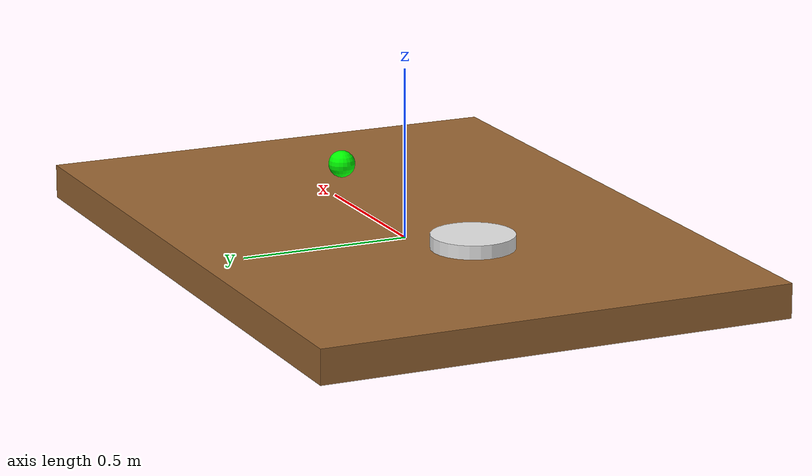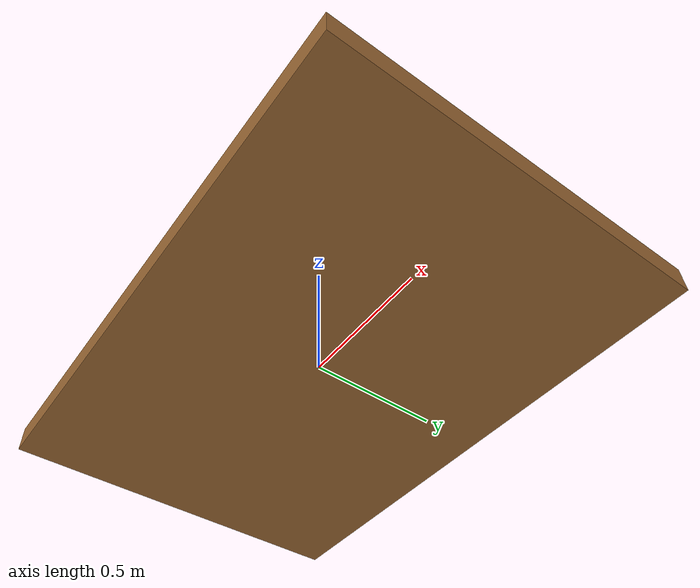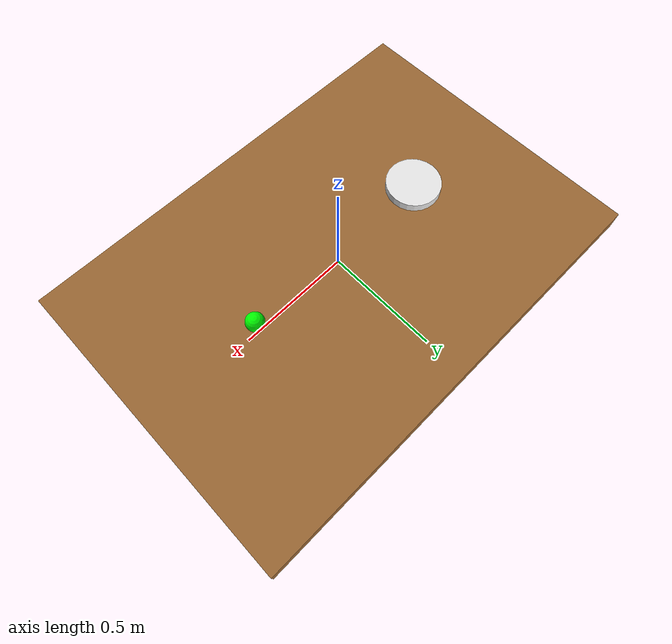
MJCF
<mujoco model="champ_tableops_milestone1">

  <option gravity="0 0 -9.81"/>

  <worldbody>

    <light pos="0 0 3"/>

    <geom
      name="table"
      type="box"
      pos="0 0 0"
      size="1.0 0.7 0.05"
      rgba="0.6 0.4 0.2 1"/>

    <body name="plate" pos="-0.45 0 0.11">
      <freejoint/>
      <geom
        name="plate_geom"
        type="cylinder"
        size="0.12 0.02"
        rgba="0.9 0.9 0.9 1"/>
    </body>

    <site
      name="target"
      pos="0.45 0 0.11"
      size="0.04"
      rgba="0 1 0 1"/>

  </worldbody>

</mujoco>
